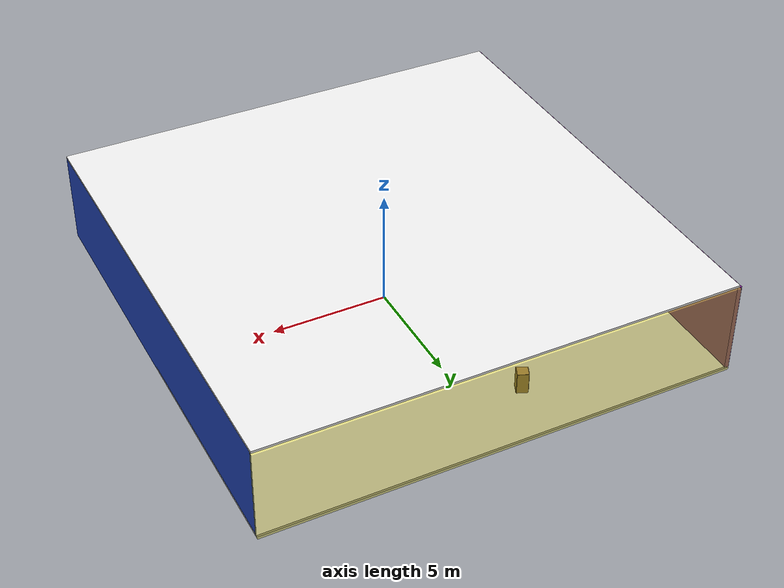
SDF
<sdf version="1.4">
 <world name="default">
  <physics type="ode">
   <max_step_size>0.001</max_step_size>
   <real_time_factor>1</real_time_factor>
   <real_time_update_rate>1000</real_time_update_rate>
   <gravity>0 0 -9.8</gravity>
  </physics>
  <scene><ambient>0.4 0.4 0.4 1</ambient><background>0.7 0.7 0.7 1</background><shadows>1</shadows></scene>
  <model name="Surrounding">
   <static>1</static>
   <link name="Ceiling">
    <collision name="Ceiling_Collision"><geometry><box><size>20 20 0.1</size></box></geometry></collision>
    <visual name="Ceiling_Visual">
     <geometry><box><size>20 20 0.1</size></box></geometry>
     <material>
      <script><uri>file://media/materials/scripts/gazebo.material</uri><name>Gazebo/WhiteGlow</name></script>
     </material>
    </visual>
    <pose>0 0 4.05 0 0 0</pose>
   </link>
   <link name="Wall_South">
    <collision name="Wall_South_Collision">
     <geometry><box><size>20 0 4</size></box></geometry>
     <pose>0 0 2 0 -0 0</pose>
    </collision>
    <visual name="Wall_South_Visual">
     <pose>0 0 2 0 -0 0</pose>
     <geometry><box><size>20 0 4</size></box></geometry>
     <material>
      <script><uri>file://media/materials/scripts/gazebo.material</uri><name>Gazebo/Pioneer2Body</name></script>
     </material>
    </visual>
    <velocity_decay><linear>0</linear><angular>0</angular></velocity_decay>
    <pose>0 -10 0 0 -0 0</pose>
   </link>
   <link name="Wall_East">
    <collision name="Wall_21_Collision">
     <geometry><box><size>20 0 4</size></box></geometry>
     <pose>0 0 2 0 -0 0</pose>
    </collision>
    <visual name="Wall_21_Visual">
     <pose>0 0 2 0 -0 0</pose>
     <geometry><box><size>20 0 4</size></box></geometry>
     <material>
      <script><uri>file://media/materials/scripts/gazebo.material</uri><name>Gazebo/BlueGlow</name></script>
     </material>
    </visual>
    <velocity_decay><linear>0</linear><angular>0</angular></velocity_decay>
    <pose>10 0 0 0 -0 1.5708</pose>
   </link>
   <link name="Wall_North">
    <collision name="Wall_22_Collision">
     <geometry><box><size>20 0.2 4</size></box></geometry>
     <pose>0 0 2 0 -0 0</pose>
    </collision>
    <visual name="Wall_22_Visual">
     <pose>0 0 2 0 -0 0</pose>
     <geometry><box><size>20 0.2 4</size></box></geometry>
     <material>
      <script>
       <uri>file://media/materials/scripts/gazebo.material</uri>
       <name>Gazebo/YellowTransparent</name>
      </script>
     </material>
    </visual>
    <velocity_decay><linear>0</linear><angular>0</angular></velocity_decay>
    <pose>0 10 0 0 -0 0</pose>
   </link>
   <link name="Wall_West">
    <collision name="Wall_23_Collision">
     <geometry><box><size>20 0.2 4</size></box></geometry>
     <pose>0 0 2 0 -0 0</pose>
    </collision>
    <visual name="Wall_23_Visual">
     <pose>0 0 2 0 -0 0</pose>
     <geometry><box><size>20 0.2 4</size></box></geometry>
     <material>
      <script><uri>file://media/materials/scripts/gazebo.material</uri><name>Gazebo/Purple</name></script>
     </material>
    </visual>
    <velocity_decay><linear>0</linear><angular>0</angular></velocity_decay>
    <pose>-10 0 0 0 0 -1.5708</pose>
   </link>
   <link name="Ground_link">
    <collision name="collision">
     <pose>0 0 .05 0 -0 0</pose>
     <geometry><box><size>20 20 0.1</size></box></geometry>
    </collision>
    <visual name="visual">
     <pose>0 0 .05 0 -0 0</pose>
     <geometry><box><size>20 20 0.1</size></box></geometry>
     <material>
      <script><uri>file://media/materials/scripts/gazebo.material</uri><name>Gazebo/White</name></script>
     </material>
    </visual>
   </link>
   <static>1</static>
  </model>
  <spherical_coordinates>
   <surface_model>EARTH_WGS84</surface_model>
   <latitude_deg>0</latitude_deg>
   <longitude_deg>0</longitude_deg>
   <elevation>0</elevation>
   <heading_deg>0</heading_deg>
  </spherical_coordinates>
  <light name="lightball_0" type="diffuse">
   <diffuse>0.8 0.8 0.8 1</diffuse>
   <specular>0.2 0.2 0.2 1</specular>
   <attenuation>
    <range>100</range>
    <constant>0.7</constant>
    <linear>0.01</linear>
    <quadratic>0.001</quadratic>
   </attenuation>
   <direction>-0.5 0.1 -0.9</direction>
   <pose>-7.45810836044 6.19547672823 2.04319169099 0 0 0</pose>
  </light>
  <light name="lightball_1" type="diffuse">
   <diffuse>0.8 0.8 0.8 1</diffuse>
   <specular>0.2 0.2 0.2 1</specular>
   <attenuation>
    <range>100</range>
    <constant>0.7</constant>
    <linear>0.01</linear>
    <quadratic>0.001</quadratic>
   </attenuation>
   <direction>-0.5 0.1 -0.9</direction>
   <pose>0.423495780591 2.56867393054 1.91448094805 0 0 0</pose>
  </light>
  <light name="lightball_2" type="diffuse">
   <diffuse>0.8 0.8 0.8 1</diffuse>
   <specular>0.2 0.2 0.2 1</specular>
   <attenuation>
    <range>100</range>
    <constant>0.7</constant>
    <linear>0.01</linear>
    <quadratic>0.001</quadratic>
   </attenuation>
   <direction>-0.5 0.1 -0.9</direction>
   <pose>-9.01902618043 -6.92588374602 2.07904969537 0 0 0</pose>
  </light>
  <light name="lightball_3" type="diffuse">
   <diffuse>0.8 0.8 0.8 1</diffuse>
   <specular>0.2 0.2 0.2 1</specular>
   <attenuation>
    <range>100</range>
    <constant>0.7</constant>
    <linear>0.01</linear>
    <quadratic>0.001</quadratic>
   </attenuation>
   <direction>-0.5 0.1 -0.9</direction>
   <pose>-1.16298241987 -9.18016707056 1.30701440296 0 0 0</pose>
  </light>
  <light name="lightball_4" type="diffuse">
   <diffuse>0.8 0.8 0.8 1</diffuse>
   <specular>0.2 0.2 0.2 1</specular>
   <attenuation>
    <range>100</range>
    <constant>0.7</constant>
    <linear>0.01</linear>
    <quadratic>0.001</quadratic>
   </attenuation>
   <direction>-0.5 0.1 -0.9</direction>
   <pose>-6.55150673127 4.62361556618 2.57657042697 0 0 0</pose>
  </light>
  <light name="lightball_5" type="diffuse">
   <diffuse>0.8 0.8 0.8 1</diffuse>
   <specular>0.2 0.2 0.2 1</specular>
   <attenuation>
    <range>100</range>
    <constant>0.7</constant>
    <linear>0.01</linear>
    <quadratic>0.001</quadratic>
   </attenuation>
   <direction>-0.5 0.1 -0.9</direction>
   <pose>4.64714725825 3.53889245031 3.70930481324 0 0 0</pose>
  </light>
  <light name="lightball_6" type="diffuse">
   <diffuse>0.8 0.8 0.8 1</diffuse>
   <specular>0.2 0.2 0.2 1</specular>
   <attenuation>
    <range>100</range>
    <constant>0.7</constant>
    <linear>0.01</linear>
    <quadratic>0.001</quadratic>
   </attenuation>
   <direction>-0.5 0.1 -0.9</direction>
   <pose>-1.16768182193 7.50237818124 3.02722363725 0 0 0</pose>
  </light>
  <light name="lightball_7" type="diffuse">
   <diffuse>0.8 0.8 0.8 1</diffuse>
   <specular>0.2 0.2 0.2 1</specular>
   <attenuation>
    <range>100</range>
    <constant>0.7</constant>
    <linear>0.01</linear>
    <quadratic>0.001</quadratic>
   </attenuation>
   <direction>-0.5 0.1 -0.9</direction>
   <pose>9.24607299503 -6.87083934563 2.12746723871 0 0 0</pose>
  </light>
  <light name="lightball_8" type="diffuse">
   <diffuse>0.8 0.8 0.8 1</diffuse>
   <specular>0.2 0.2 0.2 1</specular>
   <attenuation>
    <range>100</range>
    <constant>0.7</constant>
    <linear>0.01</linear>
    <quadratic>0.001</quadratic>
   </attenuation>
   <direction>-0.5 0.1 -0.9</direction>
   <pose>-9.75937131628 3.96374952558 1.07651152718 0 0 0</pose>
  </light>
  <light name="lightball_9" type="diffuse">
   <diffuse>0.8 0.8 0.8 1</diffuse>
   <specular>0.2 0.2 0.2 1</specular>
   <attenuation>
    <range>100</range>
    <constant>0.7</constant>
    <linear>0.01</linear>
    <quadratic>0.001</quadratic>
   </attenuation>
   <direction>-0.5 0.1 -0.9</direction>
   <pose>-5.31604280257 -5.62460543065 1.91480715831 0 0 0</pose>
  </light>
  <light name="lightball_10" type="diffuse">
   <diffuse>0.8 0.8 0.8 1</diffuse>
   <specular>0.2 0.2 0.2 1</specular>
   <attenuation>
    <range>100</range>
    <constant>0.7</constant>
    <linear>0.01</linear>
    <quadratic>0.001</quadratic>
   </attenuation>
   <direction>-0.5 0.1 -0.9</direction>
   <pose>5.06857592891 -9.65186108088 1.39375090154 0 0 0</pose>
  </light>
  <light name="lightball_11" type="diffuse">
   <diffuse>0.8 0.8 0.8 1</diffuse>
   <specular>0.2 0.2 0.2 1</specular>
   <attenuation>
    <range>100</range>
    <constant>0.7</constant>
    <linear>0.01</linear>
    <quadratic>0.001</quadratic>
   </attenuation>
   <direction>-0.5 0.1 -0.9</direction>
   <pose>0.437262903348 -4.06330681802 1.28682885796 0 0 0</pose>
  </light>
  <light name="lightball_12" type="diffuse">
   <diffuse>0.8 0.8 0.8 1</diffuse>
   <specular>0.2 0.2 0.2 1</specular>
   <attenuation>
    <range>100</range>
    <constant>0.7</constant>
    <linear>0.01</linear>
    <quadratic>0.001</quadratic>
   </attenuation>
   <direction>-0.5 0.1 -0.9</direction>
   <pose>2.29903631146 -6.79929746447 2.19841005945 0 0 0</pose>
  </light>
  <light name="lightball_13" type="diffuse">
   <diffuse>0.8 0.8 0.8 1</diffuse>
   <specular>0.2 0.2 0.2 1</specular>
   <attenuation>
    <range>100</range>
    <constant>0.7</constant>
    <linear>0.01</linear>
    <quadratic>0.001</quadratic>
   </attenuation>
   <direction>-0.5 0.1 -0.9</direction>
   <pose>-8.49480677964 -8.94458359526 1.23852365644 0 0 0</pose>
  </light>
  <include><uri>model://cabinet</uri><pose>-7.17854944912 3.88222918201 0 0 0 0.69381434038</pose></include>
  <include><uri>model://cabinet</uri><pose>-2.11538016378 7.54639461734 0 0 0 1.16242413744</pose></include>
 </world>
</sdf>

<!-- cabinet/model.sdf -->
<sdf version="1.5">
  <model name="cabinet">
    <static>true</static>
    <link name="cabinet_bottom_plate">
      <inertial>
        <pose>0 0 -1 0 0 0</pose>
        <inertia>
          <ixx>2.050000</ixx>
          <ixy>0</ixy>
          <ixz>0</ixz>
          <iyy>2.050000</iyy>
          <iyz>0</iyz>
          <izz>2.050000</izz>
        </inertia>
        <mass>25.000000</mass>
      </inertial>
      <collision name="cabinet_bottom_plate_geom">
        <pose>0 0 0.010000 0 0 0</pose>
        <geometry>
          <box>
            <size>0.450000 0.450000 0.020000</size>
          </box>
        </geometry>
      </collision>
      <visual name="cabinet_bottom_plate_geom_visual">
        <pose>0 0 0.010000 0 0 0</pose>
        <geometry>
          <box>
            <size>0.450000 0.450000 0.020000</size>
          </box>
        </geometry>
        <material>
          <script>
            <uri>model://media/materials/scripts/gazebo.material</uri>
            <name>Gazebo/Wood</name>
          </script>
        </material>
      </visual>
      <collision name="cabinet_bottom_plate_geom_cabinet_back_plate">
        <pose>0.235000 0 0.510000 0 0 0</pose>
        <geometry>
          <box>
            <size>0.020000 0.450000 1.020000</size>
          </box>
        </geometry>
      </collision>
      <visual name="cabinet_bottom_plate_geom_cabinet_back_plate_visual">
        <pose>0.235000 0 0.510000 0 0 0</pose>
        <geometry>
          <box>
            <size>0.020000 0.450000 1.020000</size>
          </box>
        </geometry>
        <material>
          <script>
            <uri>model://media/materials/scripts/gazebo.material</uri>
            <name>Gazebo/Wood</name>
          </script>
        </material>
      </visual>
      <collision name="cabinet_bottom_plate_geom_cabinet_left_plate">
        <pose>0 0.235000 0.510000 0 0 0</pose>
        <geometry>
          <box>
            <size>0.450000 0.020000 1.020000</size>
          </box>
        </geometry>
      </collision>
      <visual name="cabinet_bottom_plate_geom_cabinet_left_plate_visual">
        <pose>0 0.235000 0.510000 0 0 0</pose>
        <geometry>
          <box>
            <size>0.450000 0.020000 1.020000</size>
          </box>
        </geometry>
        <material>
          <script>
            <uri>model://media/materials/scripts/gazebo.material</uri>
            <name>Gazebo/Wood</name>
          </script>
        </material>
      </visual>
      <collision name="cabinet_bottom_plate_geom_cabinet_middle_plate">
        <pose>0 0 0.510000 0 0 0</pose>
        <geometry>
          <box>
            <size>0.450000 0.450000 0.020000</size>
          </box>
        </geometry>
      </collision>
      <visual name="cabinet_bottom_plate_geom_cabinet_middle_plate_visual">
        <pose>0 0 0.510000 0 0 0</pose>
        <geometry>
          <box>
            <size>0.450000 0.450000 0.020000</size>
          </box>
        </geometry>
        <material>
          <script>
            <uri>model://media/materials/scripts/gazebo.material</uri>
            <name>Gazebo/Wood</name>
          </script>
        </material>
      </visual>
      <collision name="cabinet_bottom_plate_geom_cabinet_right_plate">
        <pose>0 -0.235000 0.510000 0 0 0</pose>
        <geometry>
          <box>
            <size>0.450000 0.020000 1.020000</size>
          </box>
        </geometry>
      </collision>
      <visual name="cabinet_bottom_plate_geom_cabinet_right_plate_visual">
        <pose>0 -0.235000 0.510000 0 0 0</pose>
        <geometry>
          <box>
            <size>0.450000 0.020000 1.020000</size>
          </box>
        </geometry>
        <material>
          <script>
            <uri>model://media/materials/scripts/gazebo.material</uri>
            <name>Gazebo/Wood</name>
          </script>
        </material>
      </visual>
      <collision name="cabinet_bottom_plate_geom_cabinet_top_plate">
        <pose>0 0 1.010000 0 0 0</pose>
        <geometry>
          <box>
            <size>0.450000 0.450000 0.020000</size>
          </box>
        </geometry>
      </collision>
      <visual name="cabinet_bottom_plate_geom_cabinet_top_plate_visual">
        <pose>0 0 1.010000 0 0 0</pose>
        <geometry>
          <box>
            <size>0.450000 0.450000 0.020000</size>
          </box>
        </geometry>
        <material>
          <script>
            <uri>model://media/materials/scripts/gazebo.material</uri>
            <name>Gazebo/Wood</name>
          </script>
        </material>
      </visual>
    </link>
  </model>
</sdf>
